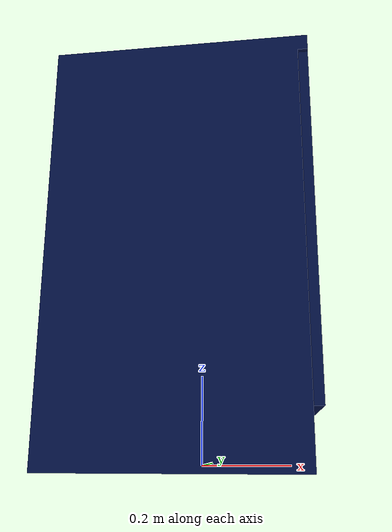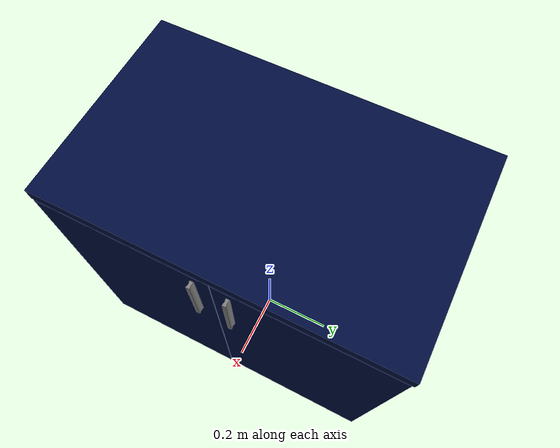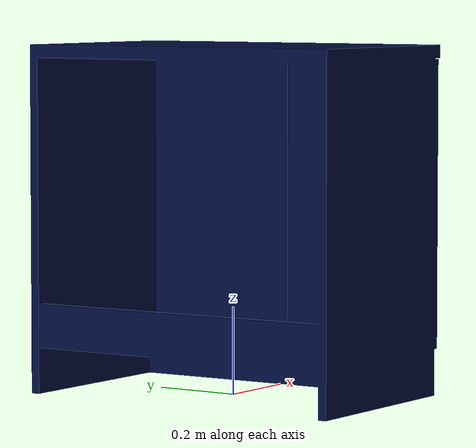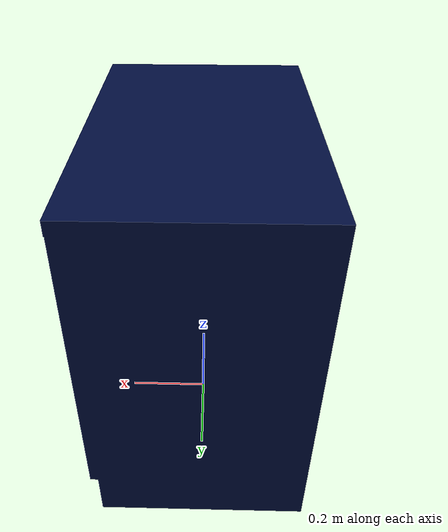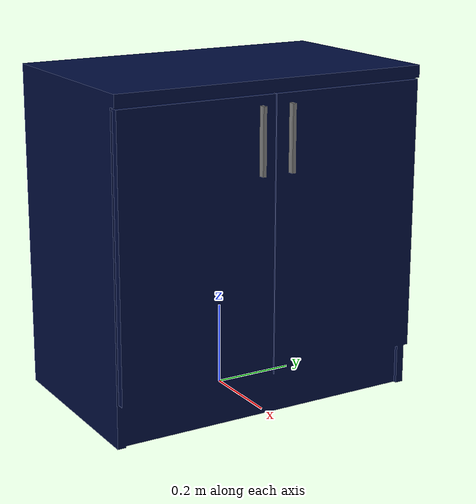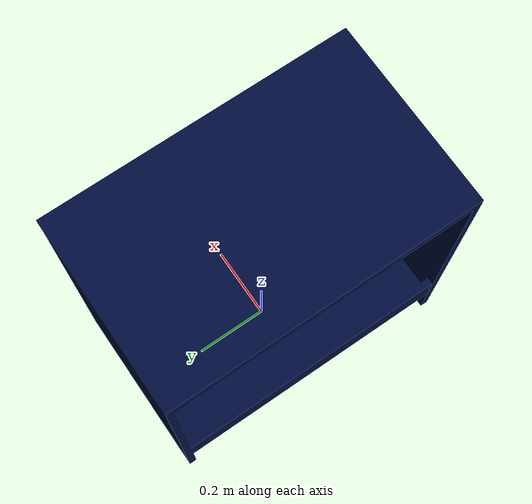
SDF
<?xml version="1.0" ?>
<sdf version="1.5">
  <model name="short_cabinet">
    <static>true</static>
    <link name="short_cabinet">
      <collision name="short_cabinet">
        <pose>0 0 0 0 0 0</pose>
        <geometry>
          <mesh>
            <uri>model://short_cabinet/meshes/model.dae</uri>
          </mesh>
        </geometry>
      </collision>

      <visual name="short_cabinet">
      <cast_shadows>true</cast_shadows>
        <geometry>
          <mesh>
          <uri>model://short_cabinet/meshes/model.dae</uri>
        </mesh>
        </geometry>
      </visual>
    </link>
  </model>
</sdf>
